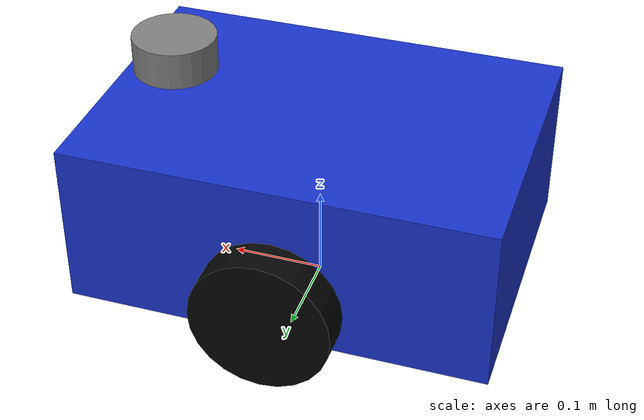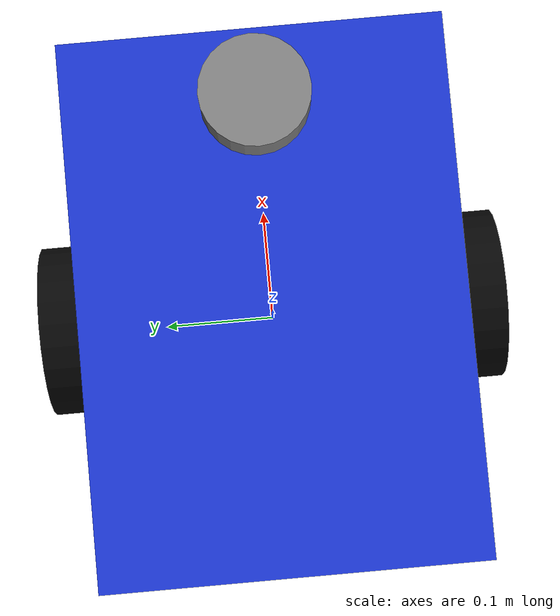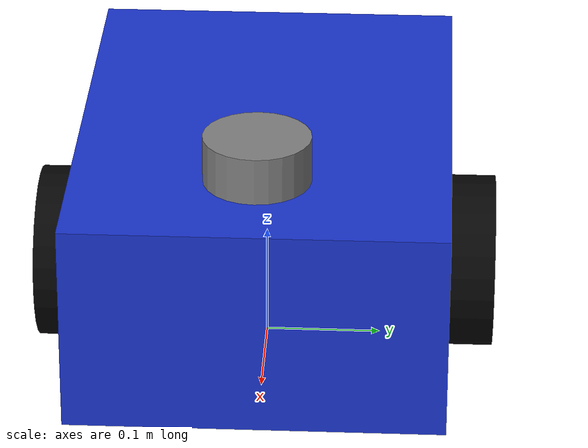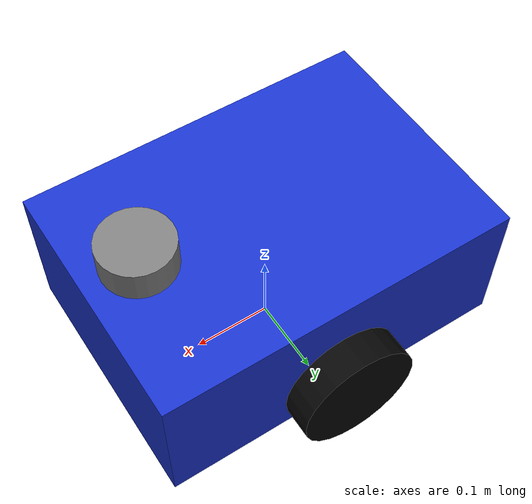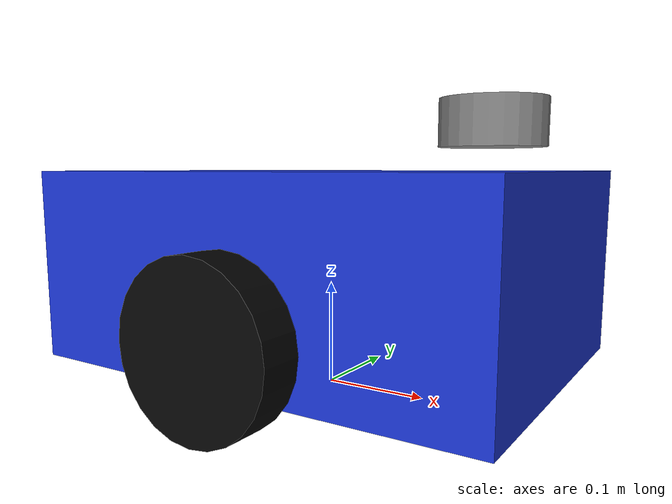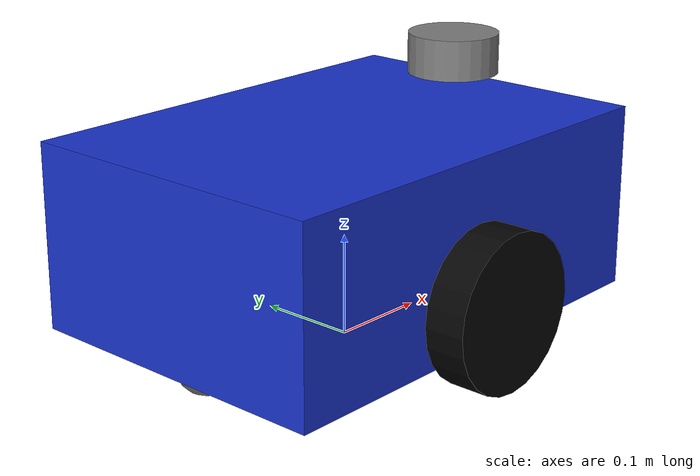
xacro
<?xml version="1.0"?>
<robot name="garcom_robot" xmlns:xacro="http://www.ros.org/wiki/xacro">

  <!-- Propriedades principais   -->

  <xacro:property name="base_length" value="0.45"/>
  <xacro:property name="base_width"  value="0.32"/>
  <xacro:property name="base_height" value="0.18"/>

  <xacro:property name="wheel_radius" value="0.075"/>
  <xacro:property name="wheel_width"  value="0.04"/>
  <xacro:property name="wheel_y"      value="0.18"/>

  <!-- Materiais                 -->

  <material name="blue">
    <color rgba="0.1 0.2 0.8 1.0"/>
  </material>

  <material name="black">
    <color rgba="0.02 0.02 0.02 1.0"/>
  </material>

  <material name="gray">
    <color rgba="0.5 0.5 0.5 1.0"/>
  </material>

  <!-- Base footprint            -->

  <link name="base_footprint"/>

  <joint name="base_footprint_joint" type="fixed">
    <parent link="base_footprint"/>
    <child link="base_link"/>
    <origin xyz="0 0 0.12" rpy="0 0 0"/>
  </joint>

  <!-- Corpo principal           -->

  <link name="base_link">
    <visual>
      <origin xyz="0 0 0" rpy="0 0 0"/>
      <geometry>
        <box size="${base_length} ${base_width} ${base_height}"/>
      </geometry>
      <material name="blue"/>
    </visual>

    <collision>
      <origin xyz="0 0 0" rpy="0 0 0"/>
      <geometry>
        <box size="${base_length} ${base_width} ${base_height}"/>
      </geometry>
    </collision>

    <inertial>
      <mass value="5.0"/>
      <origin xyz="0 0 0"/>
      <inertia ixx="0.08" ixy="0" ixz="0" iyy="0.10" iyz="0" izz="0.12"/>
    </inertial>
  </link>

  <!-- Roda esquerda             -->

  <link name="left_wheel_link">
    <visual>
      <origin xyz="0 0 0" rpy="1.5708 0 0"/>
      <geometry>
        <cylinder radius="${wheel_radius}" length="${wheel_width}"/>
      </geometry>
      <material name="black"/>
    </visual>

    <collision>
      <origin xyz="0 0 0" rpy="1.5708 0 0"/>
      <geometry>
        <cylinder radius="${wheel_radius}" length="${wheel_width}"/>
      </geometry>
    </collision>

    <inertial>
      <mass value="0.5"/>
      <origin xyz="0 0 0"/>
      <inertia ixx="0.001" ixy="0" ixz="0" iyy="0.001" iyz="0" izz="0.001"/>
    </inertial>
  </link>

  <joint name="left_wheel_joint" type="continuous">
    <parent link="base_link"/>
    <child link="left_wheel_link"/>
    <origin xyz="0 ${wheel_y} -0.045" rpy="0 0 0"/>
    <axis xyz="0 1 0"/>
  </joint>

  <!-- Roda direita              -->

  <link name="right_wheel_link">
    <visual>
      <origin xyz="0 0 0" rpy="1.5708 0 0"/>
      <geometry>
        <cylinder radius="${wheel_radius}" length="${wheel_width}"/>
      </geometry>
      <material name="black"/>
    </visual>

    <collision>
      <origin xyz="0 0 0" rpy="1.5708 0 0"/>
      <geometry>
        <cylinder radius="${wheel_radius}" length="${wheel_width}"/>
      </geometry>
    </collision>

    <inertial>
      <mass value="0.5"/>
      <origin xyz="0 0 0"/>
      <inertia ixx="0.001" ixy="0" ixz="0" iyy="0.001" iyz="0" izz="0.001"/>
    </inertial>
  </link>

  <joint name="right_wheel_joint" type="continuous">
    <parent link="base_link"/>
    <child link="right_wheel_link"/>
    <origin xyz="0 -${wheel_y} -0.045" rpy="0 0 0"/>
    <axis xyz="0 1 0"/>
  </joint>

  <!-- Roda caster traseira      -->

  <link name="caster_link">
    <visual>
      <origin xyz="0 0 0"/>
      <geometry>
        <sphere radius="0.03"/>
      </geometry>
      <material name="gray"/>
    </visual>

    <collision>
      <origin xyz="0 0 0"/>
      <geometry>
        <sphere radius="0.03"/>
      </geometry>
    </collision>

    <inertial>
      <mass value="0.2"/>
      <origin xyz="0 0 0"/>
      <inertia ixx="0.0002" ixy="0" ixz="0" iyy="0.0002" iyz="0" izz="0.0002"/>
    </inertial>
  </link>

  <joint name="caster_joint" type="fixed">
    <parent link="base_link"/>
    <child link="caster_link"/>
    <origin xyz="-0.18 0 -0.09" rpy="0 0 0"/>
  </joint>

  <!-- Sensor laser              -->

  <link name="laser_link">
    <visual>
      <origin xyz="0 0 0"/>
      <geometry>
        <cylinder radius="0.045" length="0.04"/>
      </geometry>
      <material name="gray"/>
    </visual>

    <collision>
      <origin xyz="0 0 0"/>
      <geometry>
        <cylinder radius="0.045" length="0.04"/>
      </geometry>
    </collision>

    <inertial>
      <mass value="0.1"/>
      <origin xyz="0 0 0"/>
      <inertia ixx="0.0001" ixy="0" ixz="0" iyy="0.0001" iyz="0" izz="0.0001"/>
    </inertial>
  </link>

  <joint name="laser_joint" type="fixed">
    <parent link="base_link"/>
    <child link="laser_link"/>
    <origin xyz="0.16 0 0.13" rpy="0 0 0"/>
  </joint>

  <!-- Gazebo: cores             -->

  <gazebo reference="base_link">
    <material>Gazebo/Blue</material>
  </gazebo>

  <gazebo reference="left_wheel_link">
    <material>Gazebo/Black</material>
    <mu1>1.0</mu1>
    <mu2>1.0</mu2>
  </gazebo>

  <gazebo reference="right_wheel_link">
    <material>Gazebo/Black</material>
    <mu1>1.0</mu1>
    <mu2>1.0</mu2>
  </gazebo>

  <gazebo reference="caster_link">
    <material>Gazebo/Grey</material>
    <mu1>0.1</mu1>
    <mu2>0.1</mu2>
  </gazebo>

  <!-- Plugin diferencial        -->

  <gazebo>
    <plugin name="differential_drive_controller" filename="libgazebo_ros_diff_drive.so">
      <robotNamespace>/</robotNamespace>

      <leftJoint>left_wheel_joint</leftJoint>
      <rightJoint>right_wheel_joint</rightJoint>

      <wheelSeparation>0.36</wheelSeparation>
      <wheelDiameter>0.15</wheelDiameter>

      <commandTopic>cmd_vel</commandTopic>
      <odometryTopic>odom</odometryTopic>
      <odometryFrame>odom</odometryFrame>
      <robotBaseFrame>base_footprint</robotBaseFrame>

      <publishWheelTF>false</publishWheelTF>
      <publishWheelJointState>true</publishWheelJointState>
      <publishTf>true</publishTf>

      <updateRate>50</updateRate>
    </plugin>
  </gazebo>

  <!-- Plugin do laser           -->

  <gazebo reference="laser_link">
    <sensor type="ray" name="laser_sensor">
      <pose>0 0 0 0 0 0</pose>
      <visualize>true</visualize>
      <update_rate>10</update_rate>

      <ray>
        <scan>
          <horizontal>
            <samples>360</samples>
            <resolution>1</resolution>
            <min_angle>-3.14159</min_angle>
            <max_angle>3.14159</max_angle>
          </horizontal>
        </scan>

        <range>
          <min>0.12</min>
          <max>8.0</max>
          <resolution>0.01</resolution>
        </range>
      </ray>

      <plugin name="gazebo_ros_laser_controller" filename="libgazebo_ros_laser.so">
        <topicName>scan</topicName>
        <frameName>laser_link</frameName>
      </plugin>
    </sensor>
  </gazebo>

</robot>
